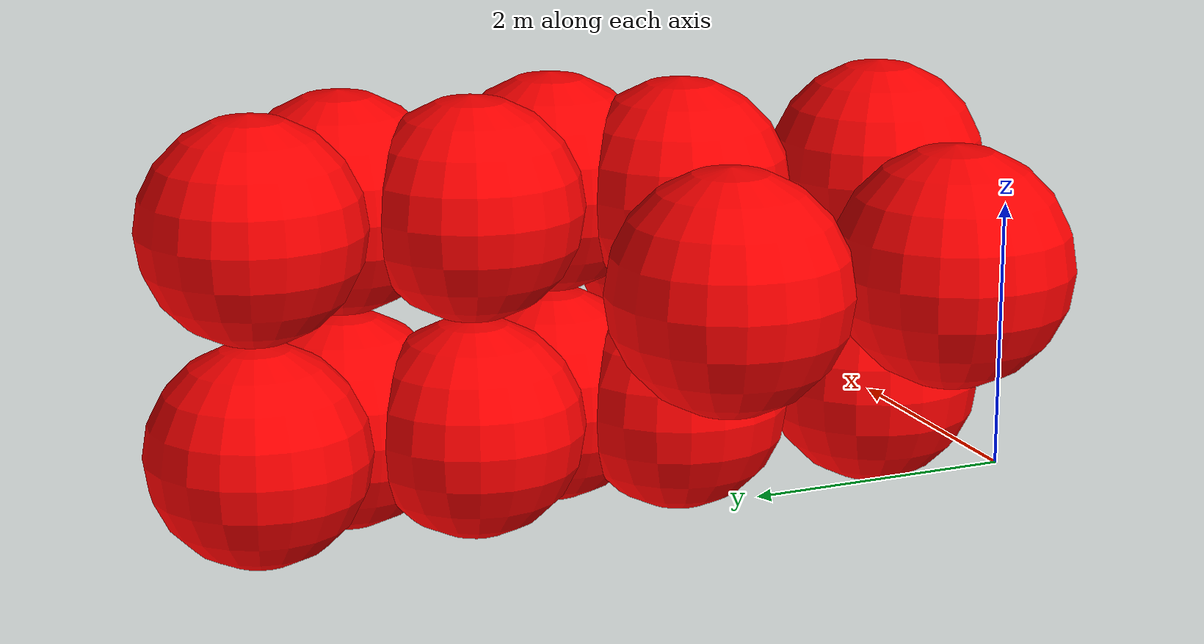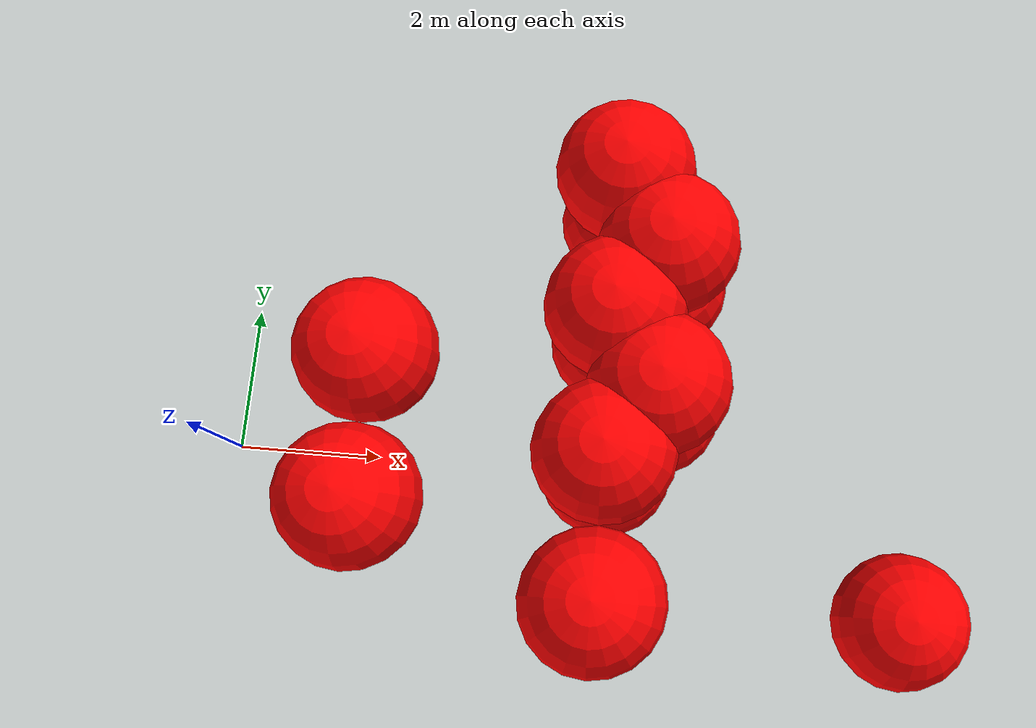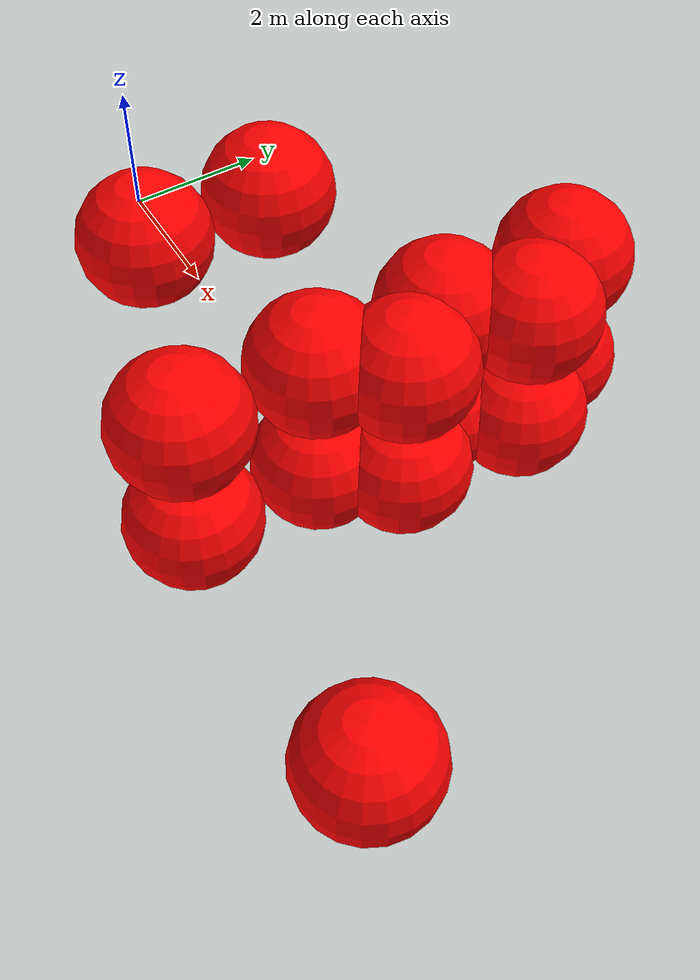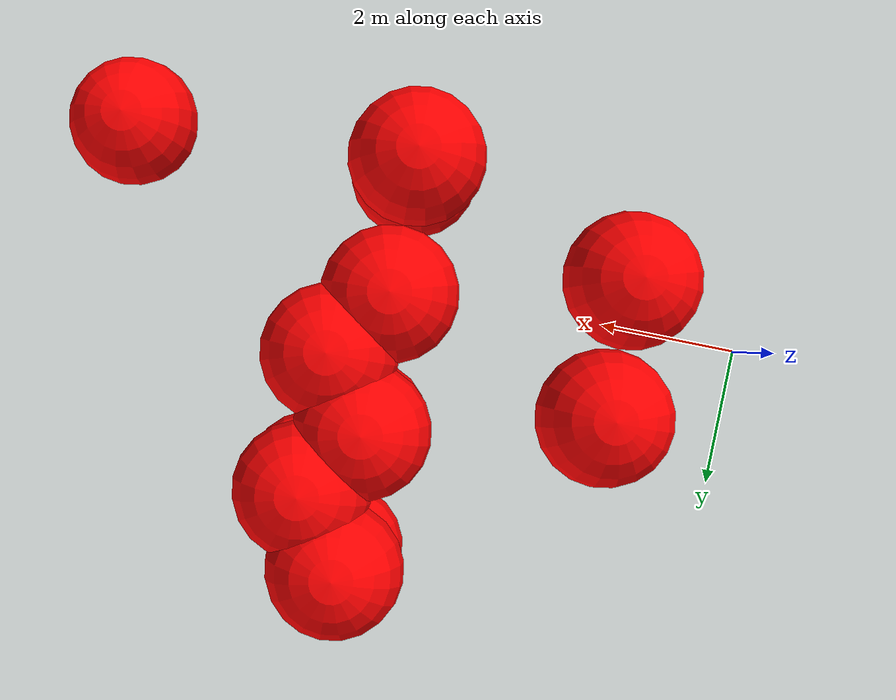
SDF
<sdf version="1.8">
 <world name="3d_world">
  <model name="obstacle_5" canonical_link="obstacle">
   <static>true</static>
   <pose relative_to="world">1.87 -0.67 1.00 0 0 0</pose>
   <link name="obstacle">
    <pose relative_to="__model__">0.0 0 0.0 0 0 0</pose>
    <visual name="visual">
     <geometry><sphere><radius>1.00</radius></sphere></geometry>
     <material>
      <ambient>1.0 0.0 0.0 1</ambient>
      <diffuse>1.0 0.0 0.0 1</diffuse>
      <specular>1.0 0.0 0.0 1</specular>
     </material>
    </visual>
    <collision name="collision"><geometry><sphere><radius>1.00</radius></sphere></geometry></collision>
    <enable_gravity>false</enable_gravity>
   </link>
   <plugin filename="ignition-gazebo-velocity-control-system" name="ignition::gazebo::systems::VelocityControl">
    <initial_linear>0.00 0.00 0.00</initial_linear>
    <initial_angular>0 0 0</initial_angular>
   </plugin>
   <plugin filename="ignition-gazebo-odometry-publisher-system" name="ignition::gazebo::systems::OdometryPublisher">
    <dimensions>3</dimensions>
   </plugin>
  </model>
  <model name="obstacle_6" canonical_link="obstacle">
   <static>true</static>
   <pose relative_to="world">1.87 1.33 1.00 0 0 0</pose>
   <link name="obstacle">
    <pose relative_to="__model__">0.0 0 0.0 0 0 0</pose>
    <visual name="visual">
     <geometry><sphere><radius>1.00</radius></sphere></geometry>
     <material>
      <ambient>1.0 0.0 0.0 1</ambient>
      <diffuse>1.0 0.0 0.0 1</diffuse>
      <specular>1.0 0.0 0.0 1</specular>
     </material>
    </visual>
    <collision name="collision"><geometry><sphere><radius>1.00</radius></sphere></geometry></collision>
    <enable_gravity>false</enable_gravity>
   </link>
   <plugin filename="ignition-gazebo-velocity-control-system" name="ignition::gazebo::systems::VelocityControl">
    <initial_linear>0.00 0.00 0.00</initial_linear>
    <initial_angular>0 0 0</initial_angular>
   </plugin>
   <plugin filename="ignition-gazebo-odometry-publisher-system" name="ignition::gazebo::systems::OdometryPublisher">
    <dimensions>3</dimensions>
   </plugin>
  </model>
  <model name="obstacle_15" canonical_link="obstacle">
   <static>true</static>
   <pose relative_to="world">5.22 -1.80 -1.00 0 0 0</pose>
   <link name="obstacle">
    <pose relative_to="__model__">0.0 0 0.0 0 0 0</pose>
    <visual name="visual">
     <geometry><sphere><radius>1.00</radius></sphere></geometry>
     <material>
      <ambient>1.0 0.0 0.0 1</ambient>
      <diffuse>1.0 0.0 0.0 1</diffuse>
      <specular>1.0 0.0 0.0 1</specular>
     </material>
    </visual>
    <collision name="collision"><geometry><sphere><radius>1.00</radius></sphere></geometry></collision>
    <enable_gravity>false</enable_gravity>
   </link>
   <plugin filename="ignition-gazebo-velocity-control-system" name="ignition::gazebo::systems::VelocityControl">
    <initial_linear>0.00 0.00 0.00</initial_linear>
    <initial_angular>0 0 0</initial_angular>
   </plugin>
   <plugin filename="ignition-gazebo-odometry-publisher-system" name="ignition::gazebo::systems::OdometryPublisher">
    <dimensions>3</dimensions>
   </plugin>
  </model>
  <model name="obstacle_16" canonical_link="obstacle">
   <static>true</static>
   <pose relative_to="world">5.22 0.20 -1.00 0 0 0</pose>
   <link name="obstacle">
    <pose relative_to="__model__">0.0 0 0.0 0 0 0</pose>
    <visual name="visual">
     <geometry><sphere><radius>1.00</radius></sphere></geometry>
     <material>
      <ambient>1.0 0.0 0.0 1</ambient>
      <diffuse>1.0 0.0 0.0 1</diffuse>
      <specular>1.0 0.0 0.0 1</specular>
     </material>
    </visual>
    <collision name="collision"><geometry><sphere><radius>1.00</radius></sphere></geometry></collision>
    <enable_gravity>false</enable_gravity>
   </link>
   <plugin filename="ignition-gazebo-velocity-control-system" name="ignition::gazebo::systems::VelocityControl">
    <initial_linear>0.00 0.00 0.00</initial_linear>
    <initial_angular>0 0 0</initial_angular>
   </plugin>
   <plugin filename="ignition-gazebo-odometry-publisher-system" name="ignition::gazebo::systems::OdometryPublisher">
    <dimensions>3</dimensions>
   </plugin>
  </model>
  <model name="obstacle_17" canonical_link="obstacle">
   <static>true</static>
   <pose relative_to="world">5.22 2.20 -1.00 0 0 0</pose>
   <link name="obstacle">
    <pose relative_to="__model__">0.0 0 0.0 0 0 0</pose>
    <visual name="visual">
     <geometry><sphere><radius>1.00</radius></sphere></geometry>
     <material>
      <ambient>1.0 0.0 0.0 1</ambient>
      <diffuse>1.0 0.0 0.0 1</diffuse>
      <specular>1.0 0.0 0.0 1</specular>
     </material>
    </visual>
    <collision name="collision"><geometry><sphere><radius>1.00</radius></sphere></geometry></collision>
    <enable_gravity>false</enable_gravity>
   </link>
   <plugin filename="ignition-gazebo-velocity-control-system" name="ignition::gazebo::systems::VelocityControl">
    <initial_linear>0.00 0.00 0.00</initial_linear>
    <initial_angular>0 0 0</initial_angular>
   </plugin>
   <plugin filename="ignition-gazebo-odometry-publisher-system" name="ignition::gazebo::systems::OdometryPublisher">
    <dimensions>3</dimensions>
   </plugin>
  </model>
  <model name="obstacle_18" canonical_link="obstacle">
   <static>true</static>
   <pose relative_to="world">5.22 4.20 -1.00 0 0 0</pose>
   <link name="obstacle">
    <pose relative_to="__model__">0.0 0 0.0 0 0 0</pose>
    <visual name="visual">
     <geometry><sphere><radius>1.00</radius></sphere></geometry>
     <material>
      <ambient>1.0 0.0 0.0 1</ambient>
      <diffuse>1.0 0.0 0.0 1</diffuse>
      <specular>1.0 0.0 0.0 1</specular>
     </material>
    </visual>
    <collision name="collision"><geometry><sphere><radius>1.00</radius></sphere></geometry></collision>
    <enable_gravity>false</enable_gravity>
   </link>
   <plugin filename="ignition-gazebo-velocity-control-system" name="ignition::gazebo::systems::VelocityControl">
    <initial_linear>0.00 0.00 0.00</initial_linear>
    <initial_angular>0 0 0</initial_angular>
   </plugin>
   <plugin filename="ignition-gazebo-odometry-publisher-system" name="ignition::gazebo::systems::OdometryPublisher">
    <dimensions>3</dimensions>
   </plugin>
  </model>
  <model name="obstacle_19" canonical_link="obstacle">
   <static>true</static>
   <pose relative_to="world">5.22 -1.80 1.00 0 0 0</pose>
   <link name="obstacle">
    <pose relative_to="__model__">0.0 0 0.0 0 0 0</pose>
    <visual name="visual">
     <geometry><sphere><radius>1.00</radius></sphere></geometry>
     <material>
      <ambient>1.0 0.0 0.0 1</ambient>
      <diffuse>1.0 0.0 0.0 1</diffuse>
      <specular>1.0 0.0 0.0 1</specular>
     </material>
    </visual>
    <collision name="collision"><geometry><sphere><radius>1.00</radius></sphere></geometry></collision>
    <enable_gravity>false</enable_gravity>
   </link>
   <plugin filename="ignition-gazebo-velocity-control-system" name="ignition::gazebo::systems::VelocityControl">
    <initial_linear>0.00 0.00 0.00</initial_linear>
    <initial_angular>0 0 0</initial_angular>
   </plugin>
   <plugin filename="ignition-gazebo-odometry-publisher-system" name="ignition::gazebo::systems::OdometryPublisher">
    <dimensions>3</dimensions>
   </plugin>
  </model>
  <model name="obstacle_20" canonical_link="obstacle">
   <static>true</static>
   <pose relative_to="world">5.22 0.20 1.00 0 0 0</pose>
   <link name="obstacle">
    <pose relative_to="__model__">0.0 0 0.0 0 0 0</pose>
    <visual name="visual">
     <geometry><sphere><radius>1.00</radius></sphere></geometry>
     <material>
      <ambient>1.0 0.0 0.0 1</ambient>
      <diffuse>1.0 0.0 0.0 1</diffuse>
      <specular>1.0 0.0 0.0 1</specular>
     </material>
    </visual>
    <collision name="collision"><geometry><sphere><radius>1.00</radius></sphere></geometry></collision>
    <enable_gravity>false</enable_gravity>
   </link>
   <plugin filename="ignition-gazebo-velocity-control-system" name="ignition::gazebo::systems::VelocityControl">
    <initial_linear>0.00 0.00 0.00</initial_linear>
    <initial_angular>0 0 0</initial_angular>
   </plugin>
   <plugin filename="ignition-gazebo-odometry-publisher-system" name="ignition::gazebo::systems::OdometryPublisher">
    <dimensions>3</dimensions>
   </plugin>
  </model>
  <model name="obstacle_21" canonical_link="obstacle">
   <static>true</static>
   <pose relative_to="world">5.22 2.20 1.00 0 0 0</pose>
   <link name="obstacle">
    <pose relative_to="__model__">0.0 0 0.0 0 0 0</pose>
    <visual name="visual">
     <geometry><sphere><radius>1.00</radius></sphere></geometry>
     <material>
      <ambient>1.0 0.0 0.0 1</ambient>
      <diffuse>1.0 0.0 0.0 1</diffuse>
      <specular>1.0 0.0 0.0 1</specular>
     </material>
    </visual>
    <collision name="collision"><geometry><sphere><radius>1.00</radius></sphere></geometry></collision>
    <enable_gravity>false</enable_gravity>
   </link>
   <plugin filename="ignition-gazebo-velocity-control-system" name="ignition::gazebo::systems::VelocityControl">
    <initial_linear>0.00 0.00 0.00</initial_linear>
    <initial_angular>0 0 0</initial_angular>
   </plugin>
   <plugin filename="ignition-gazebo-odometry-publisher-system" name="ignition::gazebo::systems::OdometryPublisher">
    <dimensions>3</dimensions>
   </plugin>
  </model>
  <model name="obstacle_22" canonical_link="obstacle">
   <static>true</static>
   <pose relative_to="world">5.22 4.20 1.00 0 0 0</pose>
   <link name="obstacle">
    <pose relative_to="__model__">0.0 0 0.0 0 0 0</pose>
    <visual name="visual">
     <geometry><sphere><radius>1.00</radius></sphere></geometry>
     <material>
      <ambient>1.0 0.0 0.0 1</ambient>
      <diffuse>1.0 0.0 0.0 1</diffuse>
      <specular>1.0 0.0 0.0 1</specular>
     </material>
    </visual>
    <collision name="collision"><geometry><sphere><radius>1.00</radius></sphere></geometry></collision>
    <enable_gravity>false</enable_gravity>
   </link>
   <plugin filename="ignition-gazebo-velocity-control-system" name="ignition::gazebo::systems::VelocityControl">
    <initial_linear>0.00 0.00 0.00</initial_linear>
    <initial_angular>0 0 0</initial_angular>
   </plugin>
   <plugin filename="ignition-gazebo-odometry-publisher-system" name="ignition::gazebo::systems::OdometryPublisher">
    <dimensions>3</dimensions>
   </plugin>
  </model>
  <model name="obstacle_23" canonical_link="obstacle">
   <static>true</static>
   <pose relative_to="world">5.90 1.18 -1.00 0 0 0</pose>
   <link name="obstacle">
    <pose relative_to="__model__">0.0 0 0.0 0 0 0</pose>
    <visual name="visual">
     <geometry><sphere><radius>1.00</radius></sphere></geometry>
     <material>
      <ambient>1.0 0.0 0.0 1</ambient>
      <diffuse>1.0 0.0 0.0 1</diffuse>
      <specular>1.0 0.0 0.0 1</specular>
     </material>
    </visual>
    <collision name="collision"><geometry><sphere><radius>1.00</radius></sphere></geometry></collision>
    <enable_gravity>false</enable_gravity>
   </link>
   <plugin filename="ignition-gazebo-velocity-control-system" name="ignition::gazebo::systems::VelocityControl">
    <initial_linear>0.00 0.00 0.00</initial_linear>
    <initial_angular>0 0 0</initial_angular>
   </plugin>
   <plugin filename="ignition-gazebo-odometry-publisher-system" name="ignition::gazebo::systems::OdometryPublisher">
    <dimensions>3</dimensions>
   </plugin>
  </model>
  <model name="obstacle_24" canonical_link="obstacle">
   <static>true</static>
   <pose relative_to="world">5.90 3.18 -1.00 0 0 0</pose>
   <link name="obstacle">
    <pose relative_to="__model__">0.0 0 0.0 0 0 0</pose>
    <visual name="visual">
     <geometry><sphere><radius>1.00</radius></sphere></geometry>
     <material>
      <ambient>1.0 0.0 0.0 1</ambient>
      <diffuse>1.0 0.0 0.0 1</diffuse>
      <specular>1.0 0.0 0.0 1</specular>
     </material>
    </visual>
    <collision name="collision"><geometry><sphere><radius>1.00</radius></sphere></geometry></collision>
    <enable_gravity>false</enable_gravity>
   </link>
   <plugin filename="ignition-gazebo-velocity-control-system" name="ignition::gazebo::systems::VelocityControl">
    <initial_linear>0.00 0.00 0.00</initial_linear>
    <initial_angular>0 0 0</initial_angular>
   </plugin>
   <plugin filename="ignition-gazebo-odometry-publisher-system" name="ignition::gazebo::systems::OdometryPublisher">
    <dimensions>3</dimensions>
   </plugin>
  </model>
  <model name="obstacle_25" canonical_link="obstacle">
   <static>true</static>
   <pose relative_to="world">5.90 1.18 1.00 0 0 0</pose>
   <link name="obstacle">
    <pose relative_to="__model__">0.0 0 0.0 0 0 0</pose>
    <visual name="visual">
     <geometry><sphere><radius>1.00</radius></sphere></geometry>
     <material>
      <ambient>1.0 0.0 0.0 1</ambient>
      <diffuse>1.0 0.0 0.0 1</diffuse>
      <specular>1.0 0.0 0.0 1</specular>
     </material>
    </visual>
    <collision name="collision"><geometry><sphere><radius>1.00</radius></sphere></geometry></collision>
    <enable_gravity>false</enable_gravity>
   </link>
   <plugin filename="ignition-gazebo-velocity-control-system" name="ignition::gazebo::systems::VelocityControl">
    <initial_linear>0.00 0.00 0.00</initial_linear>
    <initial_angular>0 0 0</initial_angular>
   </plugin>
   <plugin filename="ignition-gazebo-odometry-publisher-system" name="ignition::gazebo::systems::OdometryPublisher">
    <dimensions>3</dimensions>
   </plugin>
  </model>
  <model name="obstacle_26" canonical_link="obstacle">
   <static>true</static>
   <pose relative_to="world">5.90 3.18 1.00 0 0 0</pose>
   <link name="obstacle">
    <pose relative_to="__model__">0.0 0 0.0 0 0 0</pose>
    <visual name="visual">
     <geometry><sphere><radius>1.00</radius></sphere></geometry>
     <material>
      <ambient>1.0 0.0 0.0 1</ambient>
      <diffuse>1.0 0.0 0.0 1</diffuse>
      <specular>1.0 0.0 0.0 1</specular>
     </material>
    </visual>
    <collision name="collision"><geometry><sphere><radius>1.00</radius></sphere></geometry></collision>
    <enable_gravity>false</enable_gravity>
   </link>
   <plugin filename="ignition-gazebo-velocity-control-system" name="ignition::gazebo::systems::VelocityControl">
    <initial_linear>0.00 0.00 0.00</initial_linear>
    <initial_angular>0 0 0</initial_angular>
   </plugin>
   <plugin filename="ignition-gazebo-odometry-publisher-system" name="ignition::gazebo::systems::OdometryPublisher">
    <dimensions>3</dimensions>
   </plugin>
  </model>
  <model name="obstacle_27" canonical_link="obstacle">
   <static>false</static>
   <pose relative_to="world">9.69 -1.72 -0.76 0 0 0</pose>
   <link name="obstacle">
    <pose relative_to="__model__">0.0 0 0.0 0 0 0</pose>
    <visual name="visual">
     <geometry><sphere><radius>1.00</radius></sphere></geometry>
     <material>
      <ambient>1.0 0.0 0.0 1</ambient>
      <diffuse>1.0 0.0 0.0 1</diffuse>
      <specular>1.0 0.0 0.0 1</specular>
     </material>
    </visual>
    <collision name="collision"><geometry><sphere><radius>1.00</radius></sphere></geometry></collision>
    <enable_gravity>false</enable_gravity>
   </link>
   <plugin filename="ignition-gazebo-velocity-control-system" name="ignition::gazebo::systems::VelocityControl">
    <initial_linear>0.00 0.83 0.29</initial_linear>
    <initial_angular>0 0 0</initial_angular>
   </plugin>
   <plugin filename="ignition-gazebo-odometry-publisher-system" name="ignition::gazebo::systems::OdometryPublisher">
    <dimensions>3</dimensions>
   </plugin>
  </model>
 </world>
</sdf>
